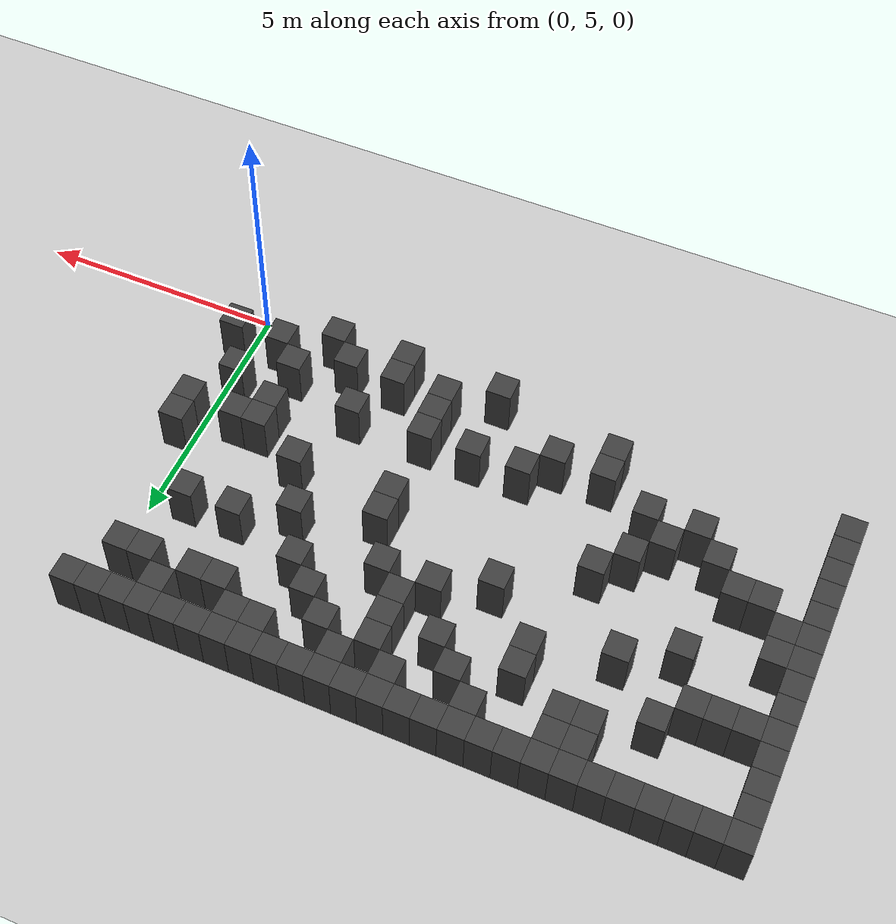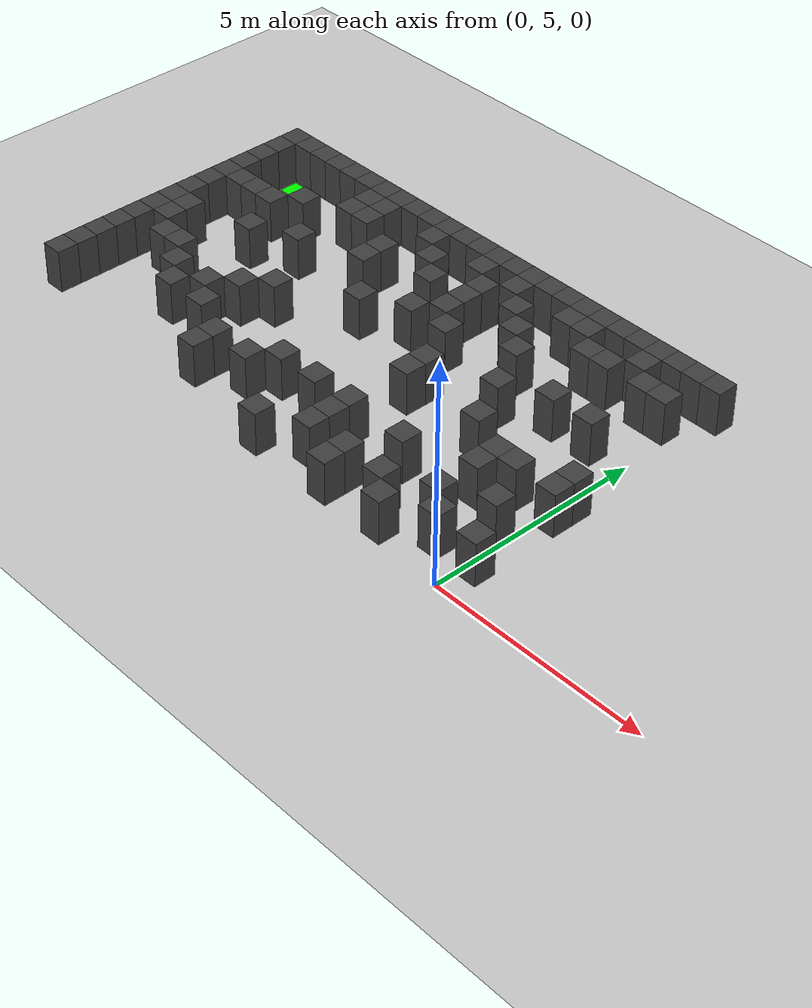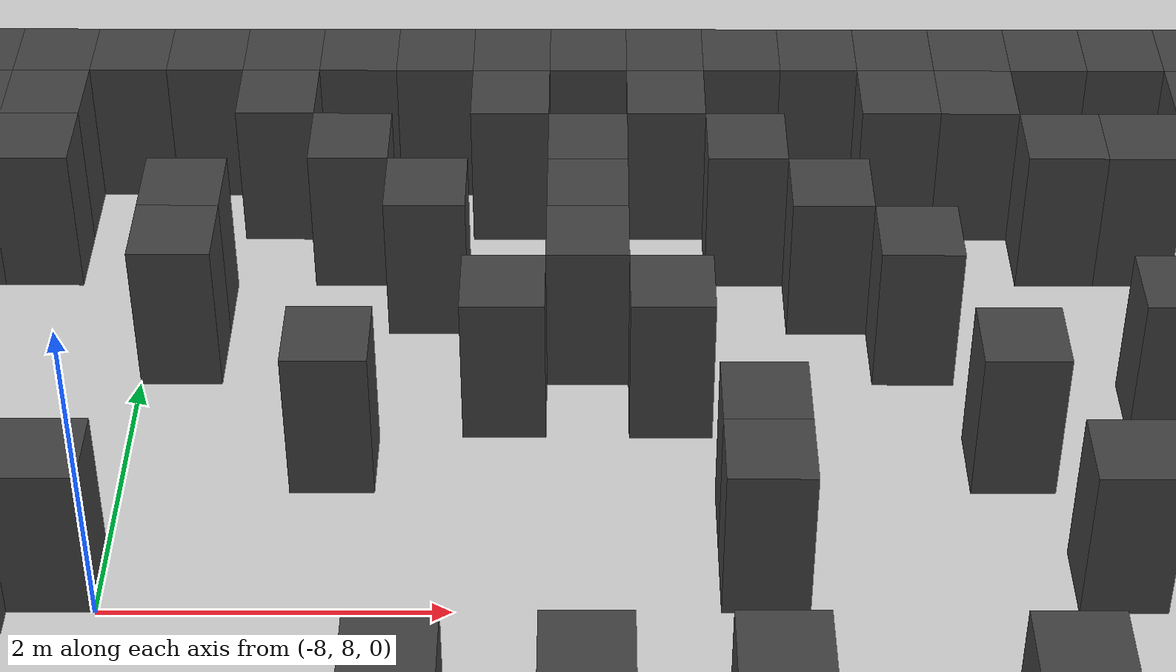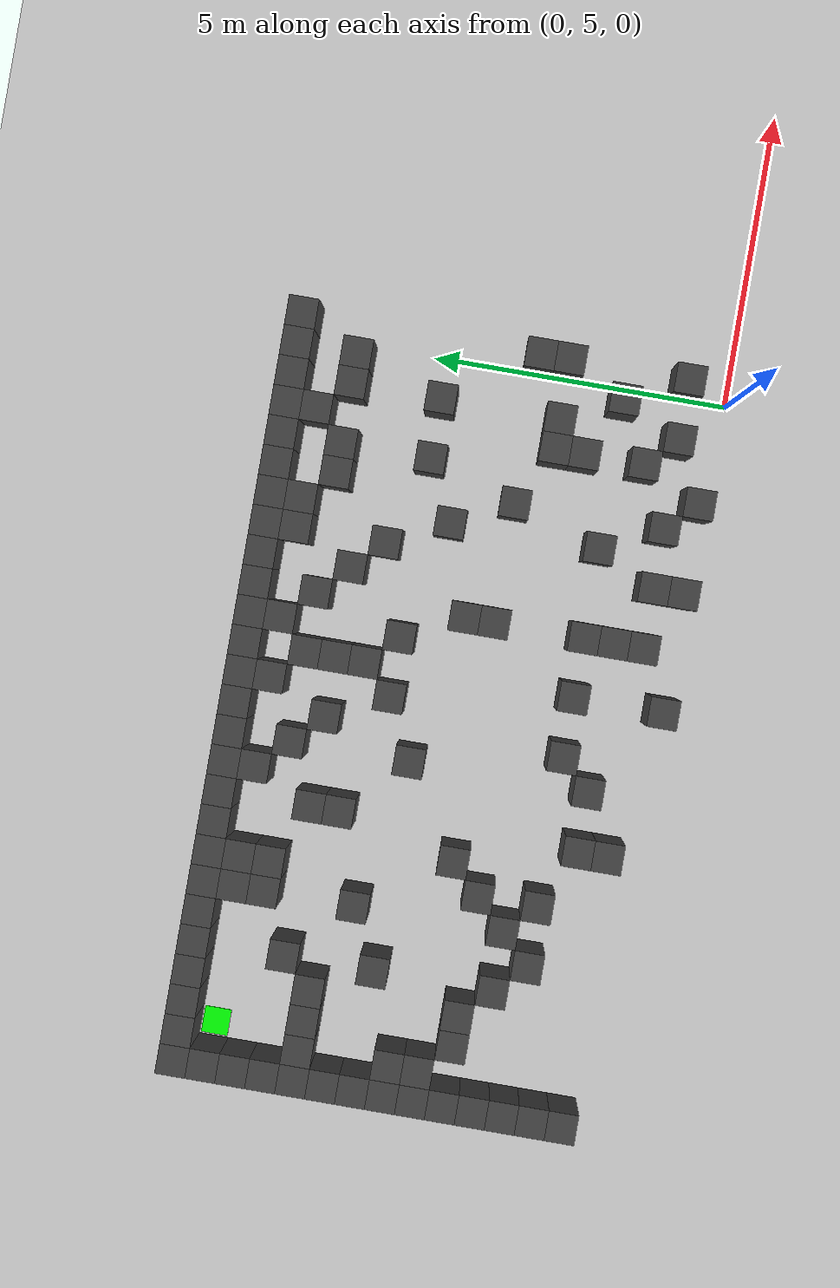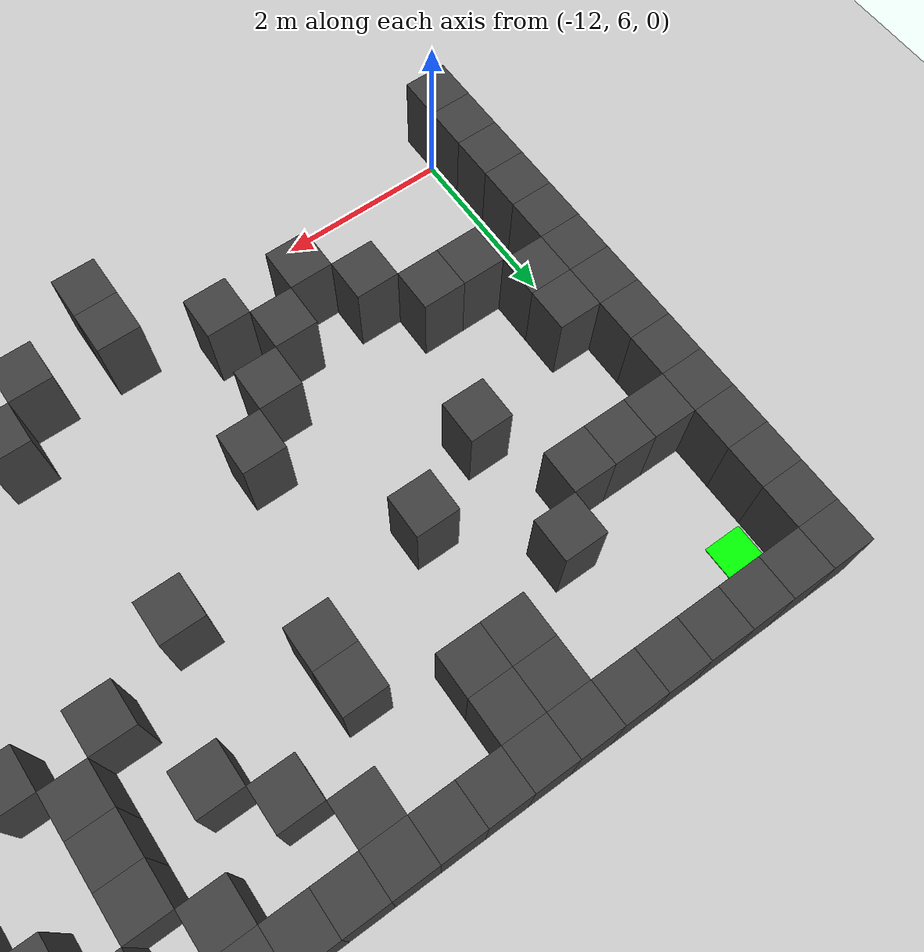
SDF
<sdf version="1.7">
 <world name="map_4225">
  <model name="ground_plane">
   <static>true</static>
   <link name="link">
    <collision name="collision">
     <geometry><plane><normal>0 0 1</normal><size>200 200</size></plane></geometry>
    </collision>
    <visual name="visual">
     <geometry><plane><normal>0 0 1</normal><size>200 200</size></plane></geometry>
     <material><ambient>0.8 0.8 0.8 1</ambient><diffuse>0.8 0.8 0.8 1</diffuse></material>
    </visual>
   </link>
  </model>
  <model name="maze_environment">
   <static>true</static>
   <link name="wall_0">
    <pose>-12.250 12.250 0.500 0 0 0</pose>
    <collision name="col"><geometry><box><size>0.5 0.5 1.0</size></box></geometry></collision>
    <visual name="vis">
     <geometry><box><size>0.5 0.5 1.0</size></box></geometry>
     <material><ambient>0.15 0.15 0.15 1</ambient><diffuse>0.25 0.25 0.25 1</diffuse></material>
    </visual>
   </link>
   <link name="wall_1">
    <pose>-11.750 12.250 0.500 0 0 0</pose>
    <collision name="col"><geometry><box><size>0.5 0.5 1.0</size></box></geometry></collision>
    <visual name="vis">
     <geometry><box><size>0.5 0.5 1.0</size></box></geometry>
     <material><ambient>0.15 0.15 0.15 1</ambient><diffuse>0.25 0.25 0.25 1</diffuse></material>
    </visual>
   </link>
   <link name="wall_2">
    <pose>-11.250 12.250 0.500 0 0 0</pose>
    <collision name="col"><geometry><box><size>0.5 0.5 1.0</size></box></geometry></collision>
    <visual name="vis">
     <geometry><box><size>0.5 0.5 1.0</size></box></geometry>
     <material><ambient>0.15 0.15 0.15 1</ambient><diffuse>0.25 0.25 0.25 1</diffuse></material>
    </visual>
   </link>
   <link name="wall_3">
    <pose>-10.750 12.250 0.500 0 0 0</pose>
    <collision name="col"><geometry><box><size>0.5 0.5 1.0</size></box></geometry></collision>
    <visual name="vis">
     <geometry><box><size>0.5 0.5 1.0</size></box></geometry>
     <material><ambient>0.15 0.15 0.15 1</ambient><diffuse>0.25 0.25 0.25 1</diffuse></material>
    </visual>
   </link>
   <link name="wall_4">
    <pose>-10.250 12.250 0.500 0 0 0</pose>
    <collision name="col"><geometry><box><size>0.5 0.5 1.0</size></box></geometry></collision>
    <visual name="vis">
     <geometry><box><size>0.5 0.5 1.0</size></box></geometry>
     <material><ambient>0.15 0.15 0.15 1</ambient><diffuse>0.25 0.25 0.25 1</diffuse></material>
    </visual>
   </link>
   <link name="wall_5">
    <pose>-9.750 12.250 0.500 0 0 0</pose>
    <collision name="col"><geometry><box><size>0.5 0.5 1.0</size></box></geometry></collision>
    <visual name="vis">
     <geometry><box><size>0.5 0.5 1.0</size></box></geometry>
     <material><ambient>0.15 0.15 0.15 1</ambient><diffuse>0.25 0.25 0.25 1</diffuse></material>
    </visual>
   </link>
   <link name="wall_6">
    <pose>-9.250 12.250 0.500 0 0 0</pose>
    <collision name="col"><geometry><box><size>0.5 0.5 1.0</size></box></geometry></collision>
    <visual name="vis">
     <geometry><box><size>0.5 0.5 1.0</size></box></geometry>
     <material><ambient>0.15 0.15 0.15 1</ambient><diffuse>0.25 0.25 0.25 1</diffuse></material>
    </visual>
   </link>
   <link name="wall_7">
    <pose>-8.750 12.250 0.500 0 0 0</pose>
    <collision name="col"><geometry><box><size>0.5 0.5 1.0</size></box></geometry></collision>
    <visual name="vis">
     <geometry><box><size>0.5 0.5 1.0</size></box></geometry>
     <material><ambient>0.15 0.15 0.15 1</ambient><diffuse>0.25 0.25 0.25 1</diffuse></material>
    </visual>
   </link>
   <link name="wall_8">
    <pose>-8.250 12.250 0.500 0 0 0</pose>
    <collision name="col"><geometry><box><size>0.5 0.5 1.0</size></box></geometry></collision>
    <visual name="vis">
     <geometry><box><size>0.5 0.5 1.0</size></box></geometry>
     <material><ambient>0.15 0.15 0.15 1</ambient><diffuse>0.25 0.25 0.25 1</diffuse></material>
    </visual>
   </link>
   <link name="wall_9">
    <pose>-7.750 12.250 0.500 0 0 0</pose>
    <collision name="col"><geometry><box><size>0.5 0.5 1.0</size></box></geometry></collision>
    <visual name="vis">
     <geometry><box><size>0.5 0.5 1.0</size></box></geometry>
     <material><ambient>0.15 0.15 0.15 1</ambient><diffuse>0.25 0.25 0.25 1</diffuse></material>
    </visual>
   </link>
   <link name="wall_10">
    <pose>-7.250 12.250 0.500 0 0 0</pose>
    <collision name="col"><geometry><box><size>0.5 0.5 1.0</size></box></geometry></collision>
    <visual name="vis">
     <geometry><box><size>0.5 0.5 1.0</size></box></geometry>
     <material><ambient>0.15 0.15 0.15 1</ambient><diffuse>0.25 0.25 0.25 1</diffuse></material>
    </visual>
   </link>
   <link name="wall_11">
    <pose>-6.750 12.250 0.500 0 0 0</pose>
    <collision name="col"><geometry><box><size>0.5 0.5 1.0</size></box></geometry></collision>
    <visual name="vis">
     <geometry><box><size>0.5 0.5 1.0</size></box></geometry>
     <material><ambient>0.15 0.15 0.15 1</ambient><diffuse>0.25 0.25 0.25 1</diffuse></material>
    </visual>
   </link>
   <link name="wall_12">
    <pose>-6.250 12.250 0.500 0 0 0</pose>
    <collision name="col"><geometry><box><size>0.5 0.5 1.0</size></box></geometry></collision>
    <visual name="vis">
     <geometry><box><size>0.5 0.5 1.0</size></box></geometry>
     <material><ambient>0.15 0.15 0.15 1</ambient><diffuse>0.25 0.25 0.25 1</diffuse></material>
    </visual>
   </link>
   <link name="wall_13">
    <pose>-5.750 12.250 0.500 0 0 0</pose>
    <collision name="col"><geometry><box><size>0.5 0.5 1.0</size></box></geometry></collision>
    <visual name="vis">
     <geometry><box><size>0.5 0.5 1.0</size></box></geometry>
     <material><ambient>0.15 0.15 0.15 1</ambient><diffuse>0.25 0.25 0.25 1</diffuse></material>
    </visual>
   </link>
   <link name="wall_14">
    <pose>-5.250 12.250 0.500 0 0 0</pose>
    <collision name="col"><geometry><box><size>0.5 0.5 1.0</size></box></geometry></collision>
    <visual name="vis">
     <geometry><box><size>0.5 0.5 1.0</size></box></geometry>
     <material><ambient>0.15 0.15 0.15 1</ambient><diffuse>0.25 0.25 0.25 1</diffuse></material>
    </visual>
   </link>
   <link name="wall_15">
    <pose>-4.750 12.250 0.500 0 0 0</pose>
    <collision name="col"><geometry><box><size>0.5 0.5 1.0</size></box></geometry></collision>
    <visual name="vis">
     <geometry><box><size>0.5 0.5 1.0</size></box></geometry>
     <material><ambient>0.15 0.15 0.15 1</ambient><diffuse>0.25 0.25 0.25 1</diffuse></material>
    </visual>
   </link>
   <link name="wall_16">
    <pose>-4.250 12.250 0.500 0 0 0</pose>
    <collision name="col"><geometry><box><size>0.5 0.5 1.0</size></box></geometry></collision>
    <visual name="vis">
     <geometry><box><size>0.5 0.5 1.0</size></box></geometry>
     <material><ambient>0.15 0.15 0.15 1</ambient><diffuse>0.25 0.25 0.25 1</diffuse></material>
    </visual>
   </link>
   <link name="wall_17">
    <pose>-3.750 12.250 0.500 0 0 0</pose>
    <collision name="col"><geometry><box><size>0.5 0.5 1.0</size></box></geometry></collision>
    <visual name="vis">
     <geometry><box><size>0.5 0.5 1.0</size></box></geometry>
     <material><ambient>0.15 0.15 0.15 1</ambient><diffuse>0.25 0.25 0.25 1</diffuse></material>
    </visual>
   </link>
   <link name="wall_18">
    <pose>-3.250 12.250 0.500 0 0 0</pose>
    <collision name="col"><geometry><box><size>0.5 0.5 1.0</size></box></geometry></collision>
    <visual name="vis">
     <geometry><box><size>0.5 0.5 1.0</size></box></geometry>
     <material><ambient>0.15 0.15 0.15 1</ambient><diffuse>0.25 0.25 0.25 1</diffuse></material>
    </visual>
   </link>
   <link name="wall_19">
    <pose>-2.750 12.250 0.500 0 0 0</pose>
    <collision name="col"><geometry><box><size>0.5 0.5 1.0</size></box></geometry></collision>
    <visual name="vis">
     <geometry><box><size>0.5 0.5 1.0</size></box></geometry>
     <material><ambient>0.15 0.15 0.15 1</ambient><diffuse>0.25 0.25 0.25 1</diffuse></material>
    </visual>
   </link>
   <link name="wall_20">
    <pose>-2.250 12.250 0.500 0 0 0</pose>
    <collision name="col"><geometry><box><size>0.5 0.5 1.0</size></box></geometry></collision>
    <visual name="vis">
     <geometry><box><size>0.5 0.5 1.0</size></box></geometry>
     <material><ambient>0.15 0.15 0.15 1</ambient><diffuse>0.25 0.25 0.25 1</diffuse></material>
    </visual>
   </link>
   <link name="wall_21">
    <pose>-1.750 12.250 0.500 0 0 0</pose>
    <collision name="col"><geometry><box><size>0.5 0.5 1.0</size></box></geometry></collision>
    <visual name="vis">
     <geometry><box><size>0.5 0.5 1.0</size></box></geometry>
     <material><ambient>0.15 0.15 0.15 1</ambient><diffuse>0.25 0.25 0.25 1</diffuse></material>
    </visual>
   </link>
   <link name="wall_22">
    <pose>-1.250 12.250 0.500 0 0 0</pose>
    <collision name="col"><geometry><box><size>0.5 0.5 1.0</size></box></geometry></collision>
    <visual name="vis">
     <geometry><box><size>0.5 0.5 1.0</size></box></geometry>
     <material><ambient>0.15 0.15 0.15 1</ambient><diffuse>0.25 0.25 0.25 1</diffuse></material>
    </visual>
   </link>
   <link name="wall_23">
    <pose>-0.750 12.250 0.500 0 0 0</pose>
    <collision name="col"><geometry><box><size>0.5 0.5 1.0</size></box></geometry></collision>
    <visual name="vis">
     <geometry><box><size>0.5 0.5 1.0</size></box></geometry>
     <material><ambient>0.15 0.15 0.15 1</ambient><diffuse>0.25 0.25 0.25 1</diffuse></material>
    </visual>
   </link>
   <link name="wall_24">
    <pose>-0.250 12.250 0.500 0 0 0</pose>
    <collision name="col"><geometry><box><size>0.5 0.5 1.0</size></box></geometry></collision>
    <visual name="vis">
     <geometry><box><size>0.5 0.5 1.0</size></box></geometry>
     <material><ambient>0.15 0.15 0.15 1</ambient><diffuse>0.25 0.25 0.25 1</diffuse></material>
    </visual>
   </link>
   <link name="wall_25">
    <pose>0.250 12.250 0.500 0 0 0</pose>
    <collision name="col"><geometry><box><size>0.5 0.5 1.0</size></box></geometry></collision>
    <visual name="vis">
     <geometry><box><size>0.5 0.5 1.0</size></box></geometry>
     <material><ambient>0.15 0.15 0.15 1</ambient><diffuse>0.25 0.25 0.25 1</diffuse></material>
    </visual>
   </link>
   <link name="wall_50">
    <pose>-12.250 11.750 0.500 0 0 0</pose>
    <collision name="col"><geometry><box><size>0.5 0.5 1.0</size></box></geometry></collision>
    <visual name="vis">
     <geometry><box><size>0.5 0.5 1.0</size></box></geometry>
     <material><ambient>0.15 0.15 0.15 1</ambient><diffuse>0.25 0.25 0.25 1</diffuse></material>
    </visual>
   </link>
   <link name="wall_51">
    <pose>-9.250 11.750 0.500 0 0 0</pose>
    <collision name="col"><geometry><box><size>0.5 0.5 1.0</size></box></geometry></collision>
    <visual name="vis">
     <geometry><box><size>0.5 0.5 1.0</size></box></geometry>
     <material><ambient>0.15 0.15 0.15 1</ambient><diffuse>0.25 0.25 0.25 1</diffuse></material>
    </visual>
   </link>
   <link name="wall_52">
    <pose>-8.750 11.750 0.500 0 0 0</pose>
    <collision name="col"><geometry><box><size>0.5 0.5 1.0</size></box></geometry></collision>
    <visual name="vis">
     <geometry><box><size>0.5 0.5 1.0</size></box></geometry>
     <material><ambient>0.15 0.15 0.15 1</ambient><diffuse>0.25 0.25 0.25 1</diffuse></material>
    </visual>
   </link>
   <link name="wall_53">
    <pose>-7.250 11.750 0.500 0 0 0</pose>
    <collision name="col"><geometry><box><size>0.5 0.5 1.0</size></box></geometry></collision>
    <visual name="vis">
     <geometry><box><size>0.5 0.5 1.0</size></box></geometry>
     <material><ambient>0.15 0.15 0.15 1</ambient><diffuse>0.25 0.25 0.25 1</diffuse></material>
    </visual>
   </link>
   <link name="wall_54">
    <pose>-5.750 11.750 0.500 0 0 0</pose>
    <collision name="col"><geometry><box><size>0.5 0.5 1.0</size></box></geometry></collision>
    <visual name="vis">
     <geometry><box><size>0.5 0.5 1.0</size></box></geometry>
     <material><ambient>0.15 0.15 0.15 1</ambient><diffuse>0.25 0.25 0.25 1</diffuse></material>
    </visual>
   </link>
   <link name="wall_55">
    <pose>-4.750 11.750 0.500 0 0 0</pose>
    <collision name="col"><geometry><box><size>0.5 0.5 1.0</size></box></geometry></collision>
    <visual name="vis">
     <geometry><box><size>0.5 0.5 1.0</size></box></geometry>
     <material><ambient>0.15 0.15 0.15 1</ambient><diffuse>0.25 0.25 0.25 1</diffuse></material>
    </visual>
   </link>
   <link name="wall_56">
    <pose>-3.250 11.750 0.500 0 0 0</pose>
    <collision name="col"><geometry><box><size>0.5 0.5 1.0</size></box></geometry></collision>
    <visual name="vis">
     <geometry><box><size>0.5 0.5 1.0</size></box></geometry>
     <material><ambient>0.15 0.15 0.15 1</ambient><diffuse>0.25 0.25 0.25 1</diffuse></material>
    </visual>
   </link>
   <link name="wall_57">
    <pose>-2.750 11.750 0.500 0 0 0</pose>
    <collision name="col"><geometry><box><size>0.5 0.5 1.0</size></box></geometry></collision>
    <visual name="vis">
     <geometry><box><size>0.5 0.5 1.0</size></box></geometry>
     <material><ambient>0.15 0.15 0.15 1</ambient><diffuse>0.25 0.25 0.25 1</diffuse></material>
    </visual>
   </link>
   <link name="wall_58">
    <pose>-1.250 11.750 0.500 0 0 0</pose>
    <collision name="col"><geometry><box><size>0.5 0.5 1.0</size></box></geometry></collision>
    <visual name="vis">
     <geometry><box><size>0.5 0.5 1.0</size></box></geometry>
     <material><ambient>0.15 0.15 0.15 1</ambient><diffuse>0.25 0.25 0.25 1</diffuse></material>
    </visual>
   </link>
   <link name="wall_65">
    <pose>-12.250 11.250 0.500 0 0 0</pose>
    <collision name="col"><geometry><box><size>0.5 0.5 1.0</size></box></geometry></collision>
    <visual name="vis">
     <geometry><box><size>0.5 0.5 1.0</size></box></geometry>
     <material><ambient>0.15 0.15 0.15 1</ambient><diffuse>0.25 0.25 0.25 1</diffuse></material>
    </visual>
   </link>
   <link name="wall_66">
    <pose>-9.250 11.250 0.500 0 0 0</pose>
    <collision name="col"><geometry><box><size>0.5 0.5 1.0</size></box></geometry></collision>
    <visual name="vis">
     <geometry><box><size>0.5 0.5 1.0</size></box></geometry>
     <material><ambient>0.15 0.15 0.15 1</ambient><diffuse>0.25 0.25 0.25 1</diffuse></material>
    </visual>
   </link>
   <link name="wall_67">
    <pose>-8.750 11.250 0.500 0 0 0</pose>
    <collision name="col"><geometry><box><size>0.5 0.5 1.0</size></box></geometry></collision>
    <visual name="vis">
     <geometry><box><size>0.5 0.5 1.0</size></box></geometry>
     <material><ambient>0.15 0.15 0.15 1</ambient><diffuse>0.25 0.25 0.25 1</diffuse></material>
    </visual>
   </link>
   <link name="wall_68">
    <pose>-6.750 11.250 0.500 0 0 0</pose>
    <collision name="col"><geometry><box><size>0.5 0.5 1.0</size></box></geometry></collision>
    <visual name="vis">
     <geometry><box><size>0.5 0.5 1.0</size></box></geometry>
     <material><ambient>0.15 0.15 0.15 1</ambient><diffuse>0.25 0.25 0.25 1</diffuse></material>
    </visual>
   </link>
   <link name="wall_69">
    <pose>-5.250 11.250 0.500 0 0 0</pose>
    <collision name="col"><geometry><box><size>0.5 0.5 1.0</size></box></geometry></collision>
    <visual name="vis">
     <geometry><box><size>0.5 0.5 1.0</size></box></geometry>
     <material><ambient>0.15 0.15 0.15 1</ambient><diffuse>0.25 0.25 0.25 1</diffuse></material>
    </visual>
   </link>
   <link name="wall_70">
    <pose>-4.250 11.250 0.500 0 0 0</pose>
    <collision name="col"><geometry><box><size>0.5 0.5 1.0</size></box></geometry></collision>
    <visual name="vis">
     <geometry><box><size>0.5 0.5 1.0</size></box></geometry>
     <material><ambient>0.15 0.15 0.15 1</ambient><diffuse>0.25 0.25 0.25 1</diffuse></material>
    </visual>
   </link>
   <link name="wall_71">
    <pose>-2.250 11.250 0.500 0 0 0</pose>
    <collision name="col"><geometry><box><size>0.5 0.5 1.0</size></box></geometry></collision>
    <visual name="vis">
     <geometry><box><size>0.5 0.5 1.0</size></box></geometry>
     <material><ambient>0.15 0.15 0.15 1</ambient><diffuse>0.25 0.25 0.25 1</diffuse></material>
    </visual>
   </link>
   <link name="wall_72">
    <pose>-1.750 11.250 0.500 0 0 0</pose>
    <collision name="col"><geometry><box><size>0.5 0.5 1.0</size></box></geometry></collision>
    <visual name="vis">
     <geometry><box><size>0.5 0.5 1.0</size></box></geometry>
     <material><ambient>0.15 0.15 0.15 1</ambient><diffuse>0.25 0.25 0.25 1</diffuse></material>
    </visual>
   </link>
   <link name="wall_73">
    <pose>-0.750 11.250 0.500 0 0 0</pose>
    <collision name="col"><geometry><box><size>0.5 0.5 1.0</size></box></geometry></collision>
    <visual name="vis">
     <geometry><box><size>0.5 0.5 1.0</size></box></geometry>
     <material><ambient>0.15 0.15 0.15 1</ambient><diffuse>0.25 0.25 0.25 1</diffuse></material>
    </visual>
   </link>
   <link name="wall_74">
    <pose>-0.250 11.250 0.500 0 0 0</pose>
    <collision name="col"><geometry><box><size>0.5 0.5 1.0</size></box></geometry></collision>
    <visual name="vis">
     <geometry><box><size>0.5 0.5 1.0</size></box></geometry>
     <material><ambient>0.15 0.15 0.15 1</ambient><diffuse>0.25 0.25 0.25 1</diffuse></material>
    </visual>
   </link>
   <link name="wall_82">
    <pose>-12.250 10.750 0.500 0 0 0</pose>
    <collision name="col"><geometry><box><size>0.5 0.5 1.0</size></box></geometry></collision>
    <visual name="vis">
     <geometry><box><size>0.5 0.5 1.0</size></box></geometry>
     <material><ambient>0.15 0.15 0.15 1</ambient><diffuse>0.25 0.25 0.25 1</diffuse></material>
    </visual>
   </link>
   <link name="wall_83">
    <pose>-10.250 10.750 0.500 0 0 0</pose>
    <collision name="col"><geometry><box><size>0.5 0.5 1.0</size></box></geometry></collision>
    <visual name="vis">
     <geometry><box><size>0.5 0.5 1.0</size></box></geometry>
     <material><ambient>0.15 0.15 0.15 1</ambient><diffuse>0.25 0.25 0.25 1</diffuse></material>
    </visual>
   </link>
   <link name="wall_84">
    <pose>-7.750 10.750 0.500 0 0 0</pose>
    <collision name="col"><geometry><box><size>0.5 0.5 1.0</size></box></geometry></collision>
    <visual name="vis">
     <geometry><box><size>0.5 0.5 1.0</size></box></geometry>
     <material><ambient>0.15 0.15 0.15 1</ambient><diffuse>0.25 0.25 0.25 1</diffuse></material>
    </visual>
   </link>
   <link name="wall_85">
    <pose>-6.250 10.750 0.500 0 0 0</pose>
    <collision name="col"><geometry><box><size>0.5 0.5 1.0</size></box></geometry></collision>
    <visual name="vis">
     <geometry><box><size>0.5 0.5 1.0</size></box></geometry>
     <material><ambient>0.15 0.15 0.15 1</ambient><diffuse>0.25 0.25 0.25 1</diffuse></material>
    </visual>
   </link>
   <link name="wall_86">
    <pose>-5.250 10.750 0.500 0 0 0</pose>
    <collision name="col"><geometry><box><size>0.5 0.5 1.0</size></box></geometry></collision>
    <visual name="vis">
     <geometry><box><size>0.5 0.5 1.0</size></box></geometry>
     <material><ambient>0.15 0.15 0.15 1</ambient><diffuse>0.25 0.25 0.25 1</diffuse></material>
    </visual>
   </link>
   <link name="wall_87">
    <pose>-3.750 10.750 0.500 0 0 0</pose>
    <collision name="col"><geometry><box><size>0.5 0.5 1.0</size></box></geometry></collision>
    <visual name="vis">
     <geometry><box><size>0.5 0.5 1.0</size></box></geometry>
     <material><ambient>0.15 0.15 0.15 1</ambient><diffuse>0.25 0.25 0.25 1</diffuse></material>
    </visual>
   </link>
   <link name="wall_91">
    <pose>-12.250 10.250 0.500 0 0 0</pose>
    <collision name="col"><geometry><box><size>0.5 0.5 1.0</size></box></geometry></collision>
    <visual name="vis">
     <geometry><box><size>0.5 0.5 1.0</size></box></geometry>
     <material><ambient>0.15 0.15 0.15 1</ambient><diffuse>0.25 0.25 0.25 1</diffuse></material>
    </visual>
   </link>
   <link name="wall_92">
    <pose>-11.750 10.250 0.500 0 0 0</pose>
    <collision name="col"><geometry><box><size>0.5 0.5 1.0</size></box></geometry></collision>
    <visual name="vis">
     <geometry><box><size>0.5 0.5 1.0</size></box></geometry>
     <material><ambient>0.15 0.15 0.15 1</ambient><diffuse>0.25 0.25 0.25 1</diffuse></material>
    </visual>
   </link>
   <link name="wall_93">
    <pose>-11.250 10.250 0.500 0 0 0</pose>
    <collision name="col"><geometry><box><size>0.5 0.5 1.0</size></box></geometry></collision>
    <visual name="vis">
     <geometry><box><size>0.5 0.5 1.0</size></box></geometry>
     <material><ambient>0.15 0.15 0.15 1</ambient><diffuse>0.25 0.25 0.25 1</diffuse></material>
    </visual>
   </link>
   <link name="wall_94">
    <pose>-10.750 10.250 0.500 0 0 0</pose>
    <collision name="col"><geometry><box><size>0.5 0.5 1.0</size></box></geometry></collision>
    <visual name="vis">
     <geometry><box><size>0.5 0.5 1.0</size></box></geometry>
     <material><ambient>0.15 0.15 0.15 1</ambient><diffuse>0.25 0.25 0.25 1</diffuse></material>
    </visual>
   </link>
   <link name="wall_95">
    <pose>-7.750 10.250 0.500 0 0 0</pose>
    <collision name="col"><geometry><box><size>0.5 0.5 1.0</size></box></geometry></collision>
    <visual name="vis">
     <geometry><box><size>0.5 0.5 1.0</size></box></geometry>
     <material><ambient>0.15 0.15 0.15 1</ambient><diffuse>0.25 0.25 0.25 1</diffuse></material>
    </visual>
   </link>
   <link name="wall_96">
    <pose>-5.250 10.250 0.500 0 0 0</pose>
    <collision name="col"><geometry><box><size>0.5 0.5 1.0</size></box></geometry></collision>
    <visual name="vis">
     <geometry><box><size>0.5 0.5 1.0</size></box></geometry>
     <material><ambient>0.15 0.15 0.15 1</ambient><diffuse>0.25 0.25 0.25 1</diffuse></material>
    </visual>
   </link>
   <link name="wall_97">
    <pose>-3.250 10.250 0.500 0 0 0</pose>
    <collision name="col"><geometry><box><size>0.5 0.5 1.0</size></box></geometry></collision>
    <visual name="vis">
     <geometry><box><size>0.5 0.5 1.0</size></box></geometry>
     <material><ambient>0.15 0.15 0.15 1</ambient><diffuse>0.25 0.25 0.25 1</diffuse></material>
    </visual>
   </link>
   <link name="wall_101">
    <pose>-12.250 9.750 0.500 0 0 0</pose>
    <collision name="col"><geometry><box><size>0.5 0.5 1.0</size></box></geometry></collision>
    <visual name="vis">
     <geometry><box><size>0.5 0.5 1.0</size></box></geometry>
     <material><ambient>0.15 0.15 0.15 1</ambient><diffuse>0.25 0.25 0.25 1</diffuse></material>
    </visual>
   </link>
   <link name="wall_102">
    <pose>-9.250 9.750 0.500 0 0 0</pose>
    <collision name="col"><geometry><box><size>0.5 0.5 1.0</size></box></geometry></collision>
    <visual name="vis">
     <geometry><box><size>0.5 0.5 1.0</size></box></geometry>
     <material><ambient>0.15 0.15 0.15 1</ambient><diffuse>0.25 0.25 0.25 1</diffuse></material>
    </visual>
   </link>
   <link name="wall_103">
    <pose>-5.750 9.750 0.500 0 0 0</pose>
    <collision name="col"><geometry><box><size>0.5 0.5 1.0</size></box></geometry></collision>
    <visual name="vis">
     <geometry><box><size>0.5 0.5 1.0</size></box></geometry>
     <material><ambient>0.15 0.15 0.15 1</ambient><diffuse>0.25 0.25 0.25 1</diffuse></material>
    </visual>
   </link>
   <link name="wall_104">
    <pose>-4.750 9.750 0.500 0 0 0</pose>
    <collision name="col"><geometry><box><size>0.5 0.5 1.0</size></box></geometry></collision>
    <visual name="vis">
     <geometry><box><size>0.5 0.5 1.0</size></box></geometry>
     <material><ambient>0.15 0.15 0.15 1</ambient><diffuse>0.25 0.25 0.25 1</diffuse></material>
    </visual>
   </link>
   <link name="wall_105">
    <pose>-1.750 9.750 0.500 0 0 0</pose>
    <collision name="col"><geometry><box><size>0.5 0.5 1.0</size></box></geometry></collision>
    <visual name="vis">
     <geometry><box><size>0.5 0.5 1.0</size></box></geometry>
     <material><ambient>0.15 0.15 0.15 1</ambient><diffuse>0.25 0.25 0.25 1</diffuse></material>
    </visual>
   </link>
   <link name="wall_106">
    <pose>-0.750 9.750 0.500 0 0 0</pose>
    <collision name="col"><geometry><box><size>0.5 0.5 1.0</size></box></geometry></collision>
    <visual name="vis">
     <geometry><box><size>0.5 0.5 1.0</size></box></geometry>
     <material><ambient>0.15 0.15 0.15 1</ambient><diffuse>0.25 0.25 0.25 1</diffuse></material>
    </visual>
   </link>
   <link name="wall_113">
    <pose>-12.250 9.250 0.500 0 0 0</pose>
    <collision name="col"><geometry><box><size>0.5 0.5 1.0</size></box></geometry></collision>
    <visual name="vis">
     <geometry><box><size>0.5 0.5 1.0</size></box></geometry>
     <material><ambient>0.15 0.15 0.15 1</ambient><diffuse>0.25 0.25 0.25 1</diffuse></material>
    </visual>
   </link>
   <link name="wall_114">
    <pose>-10.250 9.250 0.500 0 0 0</pose>
    <collision name="col"><geometry><box><size>0.5 0.5 1.0</size></box></geometry></collision>
    <visual name="vis">
     <geometry><box><size>0.5 0.5 1.0</size></box></geometry>
     <material><ambient>0.15 0.15 0.15 1</ambient><diffuse>0.25 0.25 0.25 1</diffuse></material>
    </visual>
   </link>
   <link name="wall_115">
    <pose>-6.750 9.250 0.500 0 0 0</pose>
    <collision name="col"><geometry><box><size>0.5 0.5 1.0</size></box></geometry></collision>
    <visual name="vis">
     <geometry><box><size>0.5 0.5 1.0</size></box></geometry>
     <material><ambient>0.15 0.15 0.15 1</ambient><diffuse>0.25 0.25 0.25 1</diffuse></material>
    </visual>
   </link>
   <link name="wall_116">
    <pose>-2.750 9.250 0.500 0 0 0</pose>
    <collision name="col"><geometry><box><size>0.5 0.5 1.0</size></box></geometry></collision>
    <visual name="vis">
     <geometry><box><size>0.5 0.5 1.0</size></box></geometry>
     <material><ambient>0.15 0.15 0.15 1</ambient><diffuse>0.25 0.25 0.25 1</diffuse></material>
    </visual>
   </link>
   <link name="wall_122">
    <pose>-12.250 8.750 0.500 0 0 0</pose>
    <collision name="col"><geometry><box><size>0.5 0.5 1.0</size></box></geometry></collision>
    <visual name="vis">
     <geometry><box><size>0.5 0.5 1.0</size></box></geometry>
     <material><ambient>0.15 0.15 0.15 1</ambient><diffuse>0.25 0.25 0.25 1</diffuse></material>
    </visual>
   </link>
   <link name="wall_123">
    <pose>-11.750 8.750 0.500 0 0 0</pose>
    <collision name="col"><geometry><box><size>0.5 0.5 1.0</size></box></geometry></collision>
    <visual name="vis">
     <geometry><box><size>0.5 0.5 1.0</size></box></geometry>
     <material><ambient>0.15 0.15 0.15 1</ambient><diffuse>0.25 0.25 0.25 1</diffuse></material>
    </visual>
   </link>
   <link name="wall_124">
    <pose>-4.250 8.750 0.500 0 0 0</pose>
    <collision name="col"><geometry><box><size>0.5 0.5 1.0</size></box></geometry></collision>
    <visual name="vis">
     <geometry><box><size>0.5 0.5 1.0</size></box></geometry>
     <material><ambient>0.15 0.15 0.15 1</ambient><diffuse>0.25 0.25 0.25 1</diffuse></material>
    </visual>
   </link>
   <link name="wall_128">
    <pose>-12.250 8.250 0.500 0 0 0</pose>
    <collision name="col"><geometry><box><size>0.5 0.5 1.0</size></box></geometry></collision>
    <visual name="vis">
     <geometry><box><size>0.5 0.5 1.0</size></box></geometry>
     <material><ambient>0.15 0.15 0.15 1</ambient><diffuse>0.25 0.25 0.25 1</diffuse></material>
    </visual>
   </link>
   <link name="wall_129">
    <pose>-11.750 8.250 0.500 0 0 0</pose>
    <collision name="col"><geometry><box><size>0.5 0.5 1.0</size></box></geometry></collision>
    <visual name="vis">
     <geometry><box><size>0.5 0.5 1.0</size></box></geometry>
     <material><ambient>0.15 0.15 0.15 1</ambient><diffuse>0.25 0.25 0.25 1</diffuse></material>
    </visual>
   </link>
   <link name="wall_130">
    <pose>-8.250 8.250 0.500 0 0 0</pose>
    <collision name="col"><geometry><box><size>0.5 0.5 1.0</size></box></geometry></collision>
    <visual name="vis">
     <geometry><box><size>0.5 0.5 1.0</size></box></geometry>
     <material><ambient>0.15 0.15 0.15 1</ambient><diffuse>0.25 0.25 0.25 1</diffuse></material>
    </visual>
   </link>
   <link name="wall_131">
    <pose>-4.250 8.250 0.500 0 0 0</pose>
    <collision name="col"><geometry><box><size>0.5 0.5 1.0</size></box></geometry></collision>
    <visual name="vis">
     <geometry><box><size>0.5 0.5 1.0</size></box></geometry>
     <material><ambient>0.15 0.15 0.15 1</ambient><diffuse>0.25 0.25 0.25 1</diffuse></material>
    </visual>
   </link>
   <link name="wall_132">
    <pose>-2.250 8.250 0.500 0 0 0</pose>
    <collision name="col"><geometry><box><size>0.5 0.5 1.0</size></box></geometry></collision>
    <visual name="vis">
     <geometry><box><size>0.5 0.5 1.0</size></box></geometry>
     <material><ambient>0.15 0.15 0.15 1</ambient><diffuse>0.25 0.25 0.25 1</diffuse></material>
    </visual>
   </link>
   <link name="wall_133">
    <pose>0.250 8.250 0.500 0 0 0</pose>
    <collision name="col"><geometry><box><size>0.5 0.5 1.0</size></box></geometry></collision>
    <visual name="vis">
     <geometry><box><size>0.5 0.5 1.0</size></box></geometry>
     <material><ambient>0.15 0.15 0.15 1</ambient><diffuse>0.25 0.25 0.25 1</diffuse></material>
    </visual>
   </link>
   <link name="wall_140">
    <pose>-12.250 7.750 0.500 0 0 0</pose>
    <collision name="col"><geometry><box><size>0.5 0.5 1.0</size></box></geometry></collision>
    <visual name="vis">
     <geometry><box><size>0.5 0.5 1.0</size></box></geometry>
     <material><ambient>0.15 0.15 0.15 1</ambient><diffuse>0.25 0.25 0.25 1</diffuse></material>
    </visual>
   </link>
   <link name="wall_141">
    <pose>-11.250 7.750 0.500 0 0 0</pose>
    <collision name="col"><geometry><box><size>0.5 0.5 1.0</size></box></geometry></collision>
    <visual name="vis">
     <geometry><box><size>0.5 0.5 1.0</size></box></geometry>
     <material><ambient>0.15 0.15 0.15 1</ambient><diffuse>0.25 0.25 0.25 1</diffuse></material>
    </visual>
   </link>
   <link name="wall_142">
    <pose>-10.750 7.750 0.500 0 0 0</pose>
    <collision name="col"><geometry><box><size>0.5 0.5 1.0</size></box></geometry></collision>
    <visual name="vis">
     <geometry><box><size>0.5 0.5 1.0</size></box></geometry>
     <material><ambient>0.15 0.15 0.15 1</ambient><diffuse>0.25 0.25 0.25 1</diffuse></material>
    </visual>
   </link>
   <link name="wall_143">
    <pose>-8.750 7.750 0.500 0 0 0</pose>
    <collision name="col"><geometry><box><size>0.5 0.5 1.0</size></box></geometry></collision>
    <visual name="vis">
     <geometry><box><size>0.5 0.5 1.0</size></box></geometry>
     <material><ambient>0.15 0.15 0.15 1</ambient><diffuse>0.25 0.25 0.25 1</diffuse></material>
    </visual>
   </link>
   <link name="wall_144">
    <pose>-1.250 7.750 0.500 0 0 0</pose>
    <collision name="col"><geometry><box><size>0.5 0.5 1.0</size></box></geometry></collision>
    <visual name="vis">
     <geometry><box><size>0.5 0.5 1.0</size></box></geometry>
     <material><ambient>0.15 0.15 0.15 1</ambient><diffuse>0.25 0.25 0.25 1</diffuse></material>
    </visual>
   </link>
   <link name="wall_145">
    <pose>-0.750 7.750 0.500 0 0 0</pose>
    <collision name="col"><geometry><box><size>0.5 0.5 1.0</size></box></geometry></collision>
    <visual name="vis">
     <geometry><box><size>0.5 0.5 1.0</size></box></geometry>
     <material><ambient>0.15 0.15 0.15 1</ambient><diffuse>0.25 0.25 0.25 1</diffuse></material>
    </visual>
   </link>
   <link name="wall_146">
    <pose>0.250 7.750 0.500 0 0 0</pose>
    <collision name="col"><geometry><box><size>0.5 0.5 1.0</size></box></geometry></collision>
    <visual name="vis">
     <geometry><box><size>0.5 0.5 1.0</size></box></geometry>
     <material><ambient>0.15 0.15 0.15 1</ambient><diffuse>0.25 0.25 0.25 1</diffuse></material>
    </visual>
   </link>
   <link name="wall_154">
    <pose>-12.250 7.250 0.500 0 0 0</pose>
    <collision name="col"><geometry><box><size>0.5 0.5 1.0</size></box></geometry></collision>
    <visual name="vis">
     <geometry><box><size>0.5 0.5 1.0</size></box></geometry>
     <material><ambient>0.15 0.15 0.15 1</ambient><diffuse>0.25 0.25 0.25 1</diffuse></material>
    </visual>
   </link>
   <link name="wall_155">
    <pose>-10.250 7.250 0.500 0 0 0</pose>
    <collision name="col"><geometry><box><size>0.5 0.5 1.0</size></box></geometry></collision>
    <visual name="vis">
     <geometry><box><size>0.5 0.5 1.0</size></box></geometry>
     <material><ambient>0.15 0.15 0.15 1</ambient><diffuse>0.25 0.25 0.25 1</diffuse></material>
    </visual>
   </link>
   <link name="wall_156">
    <pose>-9.250 7.250 0.500 0 0 0</pose>
    <collision name="col"><geometry><box><size>0.5 0.5 1.0</size></box></geometry></collision>
    <visual name="vis">
     <geometry><box><size>0.5 0.5 1.0</size></box></geometry>
     <material><ambient>0.15 0.15 0.15 1</ambient><diffuse>0.25 0.25 0.25 1</diffuse></material>
    </visual>
   </link>
   <link name="wall_157">
    <pose>-1.250 7.250 0.500 0 0 0</pose>
    <collision name="col"><geometry><box><size>0.5 0.5 1.0</size></box></geometry></collision>
    <visual name="vis">
     <geometry><box><size>0.5 0.5 1.0</size></box></geometry>
     <material><ambient>0.15 0.15 0.15 1</ambient><diffuse>0.25 0.25 0.25 1</diffuse></material>
    </visual>
   </link>
   <link name="wall_160">
    <pose>-12.250 6.750 0.500 0 0 0</pose>
    <collision name="col"><geometry><box><size>0.5 0.5 1.0</size></box></geometry></collision>
    <visual name="vis">
     <geometry><box><size>0.5 0.5 1.0</size></box></geometry>
     <material><ambient>0.15 0.15 0.15 1</ambient><diffuse>0.25 0.25 0.25 1</diffuse></material>
    </visual>
   </link>
   <link name="wall_161">
    <pose>-9.750 6.750 0.500 0 0 0</pose>
    <collision name="col"><geometry><box><size>0.5 0.5 1.0</size></box></geometry></collision>
    <visual name="vis">
     <geometry><box><size>0.5 0.5 1.0</size></box></geometry>
     <material><ambient>0.15 0.15 0.15 1</ambient><diffuse>0.25 0.25 0.25 1</diffuse></material>
    </visual>
   </link>
   <link name="wall_162">
    <pose>-8.750 6.750 0.500 0 0 0</pose>
    <collision name="col"><geometry><box><size>0.5 0.5 1.0</size></box></geometry></collision>
    <visual name="vis">
     <geometry><box><size>0.5 0.5 1.0</size></box></geometry>
     <material><ambient>0.15 0.15 0.15 1</ambient><diffuse>0.25 0.25 0.25 1</diffuse></material>
    </visual>
   </link>
   <link name="wall_163">
    <pose>-6.250 6.750 0.500 0 0 0</pose>
    <collision name="col"><geometry><box><size>0.5 0.5 1.0</size></box></geometry></collision>
    <visual name="vis">
     <geometry><box><size>0.5 0.5 1.0</size></box></geometry>
     <material><ambient>0.15 0.15 0.15 1</ambient><diffuse>0.25 0.25 0.25 1</diffuse></material>
    </visual>
   </link>
   <link name="wall_164">
    <pose>-5.250 6.750 0.500 0 0 0</pose>
    <collision name="col"><geometry><box><size>0.5 0.5 1.0</size></box></geometry></collision>
    <visual name="vis">
     <geometry><box><size>0.5 0.5 1.0</size></box></geometry>
     <material><ambient>0.15 0.15 0.15 1</ambient><diffuse>0.25 0.25 0.25 1</diffuse></material>
    </visual>
   </link>
   <link name="wall_165">
    <pose>-4.250 6.750 0.500 0 0 0</pose>
    <collision name="col"><geometry><box><size>0.5 0.5 1.0</size></box></geometry></collision>
    <visual name="vis">
     <geometry><box><size>0.5 0.5 1.0</size></box></geometry>
     <material><ambient>0.15 0.15 0.15 1</ambient><diffuse>0.25 0.25 0.25 1</diffuse></material>
    </visual>
   </link>
   <link name="wall_166">
    <pose>-2.750 6.750 0.500 0 0 0</pose>
    <collision name="col"><geometry><box><size>0.5 0.5 1.0</size></box></geometry></collision>
    <visual name="vis">
     <geometry><box><size>0.5 0.5 1.0</size></box></geometry>
     <material><ambient>0.15 0.15 0.15 1</ambient><diffuse>0.25 0.25 0.25 1</diffuse></material>
    </visual>
   </link>
   <link name="wall_167">
    <pose>-0.250 6.750 0.500 0 0 0</pose>
    <collision name="col"><geometry><box><size>0.5 0.5 1.0</size></box></geometry></collision>
    <visual name="vis">
     <geometry><box><size>0.5 0.5 1.0</size></box></geometry>
     <material><ambient>0.15 0.15 0.15 1</ambient><diffuse>0.25 0.25 0.25 1</diffuse></material>
    </visual>
   </link>
   <link name="wall_175">
    <pose>-12.250 6.250 0.500 0 0 0</pose>
    <collision name="col"><geometry><box><size>0.5 0.5 1.0</size></box></geometry></collision>
    <visual name="vis">
     <geometry><box><size>0.5 0.5 1.0</size></box></geometry>
     <material><ambient>0.15 0.15 0.15 1</ambient><diffuse>0.25 0.25 0.25 1</diffuse></material>
    </visual>
   </link>
   <link name="wall_176">
    <pose>-7.750 6.250 0.500 0 0 0</pose>
    <collision name="col"><geometry><box><size>0.5 0.5 1.0</size></box></geometry></collision>
    <visual name="vis">
     <geometry><box><size>0.5 0.5 1.0</size></box></geometry>
     <material><ambient>0.15 0.15 0.15 1</ambient><diffuse>0.25 0.25 0.25 1</diffuse></material>
    </visual>
   </link>
   <link name="wall_177">
    <pose>-6.750 6.250 0.500 0 0 0</pose>
    <collision name="col"><geometry><box><size>0.5 0.5 1.0</size></box></geometry></collision>
    <visual name="vis">
     <geometry><box><size>0.5 0.5 1.0</size></box></geometry>
     <material><ambient>0.15 0.15 0.15 1</ambient><diffuse>0.25 0.25 0.25 1</diffuse></material>
    </visual>
   </link>
   <link name="wall_178">
    <pose>-4.250 6.250 0.500 0 0 0</pose>
    <collision name="col"><geometry><box><size>0.5 0.5 1.0</size></box></geometry></collision>
    <visual name="vis">
     <geometry><box><size>0.5 0.5 1.0</size></box></geometry>
     <material><ambient>0.15 0.15 0.15 1</ambient><diffuse>0.25 0.25 0.25 1</diffuse></material>
    </visual>
   </link>
   <link name="wall_179">
    <pose>-1.250 6.250 0.500 0 0 0</pose>
    <collision name="col"><geometry><box><size>0.5 0.5 1.0</size></box></geometry></collision>
    <visual name="vis">
     <geometry><box><size>0.5 0.5 1.0</size></box></geometry>
     <material><ambient>0.15 0.15 0.15 1</ambient><diffuse>0.25 0.25 0.25 1</diffuse></material>
    </visual>
   </link>
   <link name="wall_189">
    <pose>-12.250 5.750 0.500 0 0 0</pose>
    <collision name="col"><geometry><box><size>0.5 0.5 1.0</size></box></geometry></collision>
    <visual name="vis">
     <geometry><box><size>0.5 0.5 1.0</size></box></geometry>
     <material><ambient>0.15 0.15 0.15 1</ambient><diffuse>0.25 0.25 0.25 1</diffuse></material>
    </visual>
   </link>
   <link name="wall_190">
    <pose>-7.750 5.750 0.500 0 0 0</pose>
    <collision name="col"><geometry><box><size>0.5 0.5 1.0</size></box></geometry></collision>
    <visual name="vis">
     <geometry><box><size>0.5 0.5 1.0</size></box></geometry>
     <material><ambient>0.15 0.15 0.15 1</ambient><diffuse>0.25 0.25 0.25 1</diffuse></material>
    </visual>
   </link>
   <link name="wall_191">
    <pose>-4.250 5.750 0.500 0 0 0</pose>
    <collision name="col"><geometry><box><size>0.5 0.5 1.0</size></box></geometry></collision>
    <visual name="vis">
     <geometry><box><size>0.5 0.5 1.0</size></box></geometry>
     <material><ambient>0.15 0.15 0.15 1</ambient><diffuse>0.25 0.25 0.25 1</diffuse></material>
    </visual>
   </link>
   <link name="wall_192">
    <pose>-3.250 5.750 0.500 0 0 0</pose>
    <collision name="col"><geometry><box><size>0.5 0.5 1.0</size></box></geometry></collision>
    <visual name="vis">
     <geometry><box><size>0.5 0.5 1.0</size></box></geometry>
     <material><ambient>0.15 0.15 0.15 1</ambient><diffuse>0.25 0.25 0.25 1</diffuse></material>
    </visual>
   </link>
   <link name="wall_193">
    <pose>-2.250 5.750 0.500 0 0 0</pose>
    <collision name="col"><geometry><box><size>0.5 0.5 1.0</size></box></geometry></collision>
    <visual name="vis">
     <geometry><box><size>0.5 0.5 1.0</size></box></geometry>
     <material><ambient>0.15 0.15 0.15 1</ambient><diffuse>0.25 0.25 0.25 1</diffuse></material>
    </visual>
   </link>
   <link name="wall_194">
    <pose>-0.750 5.750 0.500 0 0 0</pose>
    <collision name="col"><geometry><box><size>0.5 0.5 1.0</size></box></geometry></collision>
    <visual name="vis">
     <geometry><box><size>0.5 0.5 1.0</size></box></geometry>
     <material><ambient>0.15 0.15 0.15 1</ambient><diffuse>0.25 0.25 0.25 1</diffuse></material>
    </visual>
   </link>
   <link name="wall_195">
    <pose>0.250 5.750 0.500 0 0 0</pose>
    <collision name="col"><geometry><box><size>0.5 0.5 1.0</size></box></geometry></collision>
    <visual name="vis">
     <geometry><box><size>0.5 0.5 1.0</size></box></geometry>
     <material><ambient>0.15 0.15 0.15 1</ambient><diffuse>0.25 0.25 0.25 1</diffuse></material>
    </visual>
   </link>
   <link name="wall_203">
    <pose>-5.250 5.250 0.500 0 0 0</pose>
    <collision name="col"><geometry><box><size>0.5 0.5 1.0</size></box></geometry></collision>
    <visual name="vis">
     <geometry><box><size>0.5 0.5 1.0</size></box></geometry>
     <material><ambient>0.15 0.15 0.15 1</ambient><diffuse>0.25 0.25 0.25 1</diffuse></material>
    </visual>
   </link>
   <link name="wall_204">
    <pose>-3.250 5.250 0.500 0 0 0</pose>
    <collision name="col"><geometry><box><size>0.5 0.5 1.0</size></box></geometry></collision>
    <visual name="vis">
     <geometry><box><size>0.5 0.5 1.0</size></box></geometry>
     <material><ambient>0.15 0.15 0.15 1</ambient><diffuse>0.25 0.25 0.25 1</diffuse></material>
    </visual>
   </link>
   <link name="wall_205">
    <pose>-1.750 5.250 0.500 0 0 0</pose>
    <collision name="col"><geometry><box><size>0.5 0.5 1.0</size></box></geometry></collision>
    <visual name="vis">
     <geometry><box><size>0.5 0.5 1.0</size></box></geometry>
     <material><ambient>0.15 0.15 0.15 1</ambient><diffuse>0.25 0.25 0.25 1</diffuse></material>
    </visual>
   </link>
   <link name="start_zone">
    <pose>-11.750 11.750 0.005 0 0 0</pose>
    <visual name="vis">
     <geometry><box><size>0.45 0.45 0.01</size></box></geometry>
     <material>
      <ambient>0.0 1.0 0.0 1</ambient>
      <diffuse>0.0 1.0 0.0 1</diffuse>
      <emissive>0.00 0.60 0.00 1</emissive>
     </material>
    </visual>
   </link>
  </model>
 </world>
</sdf>
